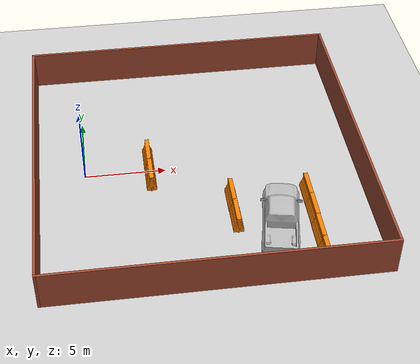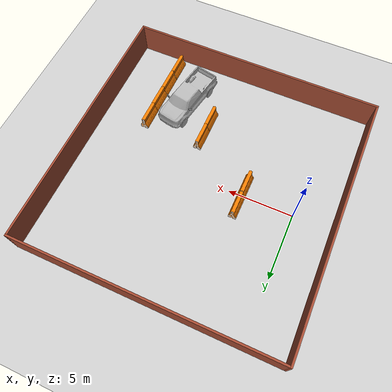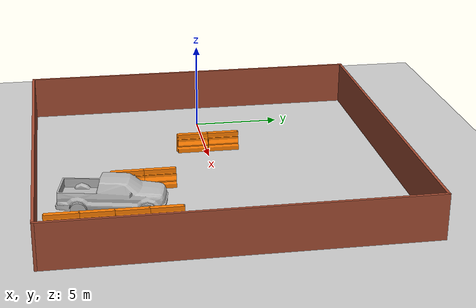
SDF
<sdf version="1.7">
 <world name="default">
  <light name="sun" type="directional">
   <pose>0 0 10 0 -0 0</pose>
   <diffuse>0.8 0.8 0.8 1</diffuse>
   <specular>0.2 0.2 0.2 1</specular>
   <attenuation>
    <range>1000</range>
    <constant>0.9</constant>
    <linear>0.01</linear>
    <quadratic>0.001</quadratic>
   </attenuation>
   <direction>-0.5 0.1 -0.9</direction>
   <spot><inner_angle>0</inner_angle><outer_angle>0</outer_angle><falloff>0</falloff></spot>
  </light>
  <model name="ground_plane">
   <static>1</static>
   <link name="link">
    <collision name="collision">
     <geometry><plane><normal>0 0 1</normal><size>100 100</size></plane></geometry>
     <surface>
      <contact><collide_bitmask>65535</collide_bitmask></contact>
      <friction><ode><mu>100</mu><mu2>50</mu2></ode></friction>
     </surface>
    </collision>
    <visual name="visual">
     <cast_shadows>0</cast_shadows>
     <geometry><plane><normal>0 0 1</normal><size>100 100</size></plane></geometry>
     <material>
      <script><uri>file://media/materials/scripts/gazebo.material</uri><name>Gazebo/Grey</name></script>
     </material>
    </visual>
   </link>
  </model>
  <gravity>0 0 -9.8</gravity>
  <magnetic_field>6e-06 2.3e-05 -4.2e-05</magnetic_field>
  <atmosphere type="adiabatic"/>
  <physics type="ode">
   <max_step_size>0.001</max_step_size>
   <real_time_factor>1</real_time_factor>
   <real_time_update_rate>1000</real_time_update_rate>
  </physics>
  <scene><ambient>0.4 0.4 0.4 1</ambient><background>0.7 0.7 0.7 1</background><shadows>1</shadows></scene>
  <spherical_coordinates>
   <surface_model>EARTH_WGS84</surface_model>
   <latitude_deg>0</latitude_deg>
   <longitude_deg>0</longitude_deg>
   <elevation>0</elevation>
   <heading_deg>0</heading_deg>
  </spherical_coordinates>
  <model name="drc_practice_organge_jersey_barrier">
   <static>1</static>
   <link name="link">
    <visual name="visual">
     <geometry>
      <mesh><uri>model://drc_practice_orange_jersey_barrier/meshes/jersey_barrier.dae</uri></mesh>
     </geometry>
    </visual>
    <collision name="collision">
     <geometry>
      <mesh><uri>model://drc_practice_orange_jersey_barrier/meshes/jersey_barrier.dae</uri></mesh>
     </geometry>
    </collision>
   </link>
   <pose>4 1 0 0 -0 0</pose>
  </model>
  <model name="drc_practice_organge_jersey_barrier_0">
   <static>1</static>
   <link name="link">
    <visual name="visual">
     <geometry>
      <mesh><uri>model://drc_practice_orange_jersey_barrier/meshes/jersey_barrier.dae</uri></mesh>
     </geometry>
    </visual>
    <collision name="collision">
     <geometry>
      <mesh><uri>model://drc_practice_orange_jersey_barrier/meshes/jersey_barrier.dae</uri></mesh>
     </geometry>
    </collision>
   </link>
   <pose>4 -0.8 0 0 -0 0</pose>
  </model>
  <model name="wall2x2">
   <pose>7 0 0 0 -0 0</pose>
   <link name="Wall_10">
    <collision name="Wall_10_Collision">
     <geometry><box><size>20 0.15 2.5</size></box></geometry>
     <pose>0 0 1.25 0 -0 0</pose>
    </collision>
    <visual name="Wall_10_Visual">
     <pose>0 0 1.25 0 -0 0</pose>
     <geometry><box><size>20 0.15 2.5</size></box></geometry>
     <material>
      <script><uri>file://media/materials/scripts/gazebo.material</uri><name>Gazebo/Bricks</name></script>
      <ambient>1 1 1 1</ambient>
     </material>
     <meta><layer>0</layer></meta>
    </visual>
    <pose>-0 -9.925 0 0 -0 3.14159</pose>
   </link>
   <link name="Wall_11">
    <collision name="Wall_11_Collision">
     <geometry><box><size>20 0.15 2.5</size></box></geometry>
     <pose>0 0 1.25 0 -0 0</pose>
    </collision>
    <visual name="Wall_11_Visual">
     <pose>0 0 1.25 0 -0 0</pose>
     <geometry><box><size>20 0.15 2.5</size></box></geometry>
     <material>
      <script><uri>file://media/materials/scripts/gazebo.material</uri><name>Gazebo/Bricks</name></script>
      <ambient>1 1 1 1</ambient>
     </material>
     <meta><layer>0</layer></meta>
    </visual>
    <pose>-9.925 -0 0 0 -0 1.5708</pose>
   </link>
   <link name="Wall_8">
    <collision name="Wall_8_Collision">
     <geometry><box><size>20 0.15 2.5</size></box></geometry>
     <pose>0 0 1.25 0 -0 0</pose>
    </collision>
    <visual name="Wall_8_Visual">
     <pose>0 0 1.25 0 -0 0</pose>
     <geometry><box><size>20 0.15 2.5</size></box></geometry>
     <material>
      <script><uri>file://media/materials/scripts/gazebo.material</uri><name>Gazebo/Bricks</name></script>
      <ambient>1 1 1 1</ambient>
     </material>
     <meta><layer>0</layer></meta>
    </visual>
    <pose>-0 9.925 0 0 -0 0</pose>
   </link>
   <link name="Wall_9">
    <collision name="Wall_9_Collision">
     <geometry><box><size>20 0.15 2.5</size></box></geometry>
     <pose>0 0 1.25 0 -0 0</pose>
    </collision>
    <visual name="Wall_9_Visual">
     <pose>0 0 1.25 0 -0 0</pose>
     <geometry><box><size>20 0.15 2.5</size></box></geometry>
     <material>
      <script><uri>file://media/materials/scripts/gazebo.material</uri><name>Gazebo/Bricks</name></script>
      <ambient>1 1 1 1</ambient>
     </material>
     <meta><layer>0</layer></meta>
    </visual>
    <pose>9.925 -0 0 0 -0 -1.5708</pose>
   </link>
   <static>1</static>
  </model>
  <model name="pickup">
   <static>1</static>
   <link name="link">
    <collision name="collision">
     <pose>0 0 0 0 0 -1.5708</pose>
     <geometry><mesh><uri>model://pickup/meshes/pickup.dae</uri></mesh></geometry>
    </collision>
    <visual name="visual">
     <pose>0 0 0 0 0 -1.5708</pose>
     <geometry><mesh><uri>model://pickup/meshes/pickup.dae</uri></mesh></geometry>
    </visual>
   </link>
   <pose>11.1509 -5.82036 0 0 -0 1.37658</pose>
  </model>
  <model name="drc_practice_organge_jersey_barrier_1_clone_0">
   <static>1</static>
   <link name="link">
    <visual name="visual">
     <geometry>
      <mesh><uri>model://drc_practice_orange_jersey_barrier/meshes/jersey_barrier.dae</uri></mesh>
     </geometry>
    </visual>
    <collision name="collision">
     <geometry>
      <mesh><uri>model://drc_practice_orange_jersey_barrier/meshes/jersey_barrier.dae</uri></mesh>
     </geometry>
    </collision>
   </link>
   <pose>8.68886 -4.9692 -0 0 -0 0</pose>
  </model>
  <model name="drc_practice_organge_jersey_barrier_1_clone_1_clone">
   <static>1</static>
   <link name="link">
    <visual name="visual">
     <geometry>
      <mesh><uri>model://drc_practice_orange_jersey_barrier/meshes/jersey_barrier.dae</uri></mesh>
     </geometry>
    </visual>
    <collision name="collision">
     <geometry>
      <mesh><uri>model://drc_practice_orange_jersey_barrier/meshes/jersey_barrier.dae</uri></mesh>
     </geometry>
    </collision>
   </link>
   <pose>13.2789 -8.604 0 0 -0 0</pose>
  </model>
  <model name="drc_practice_organge_jersey_barrier_1_clone_1_clone_0">
   <static>1</static>
   <link name="link">
    <visual name="visual">
     <geometry>
      <mesh><uri>model://drc_practice_orange_jersey_barrier/meshes/jersey_barrier.dae</uri></mesh>
     </geometry>
    </visual>
    <collision name="collision">
     <geometry>
      <mesh><uri>model://drc_practice_orange_jersey_barrier/meshes/jersey_barrier.dae</uri></mesh>
     </geometry>
    </collision>
   </link>
   <pose>13.2916 -6.8197 0 0 -0 0</pose>
  </model>
  <model name="drc_practice_organge_jersey_barrier_1_clone_1_clone_1">
   <static>1</static>
   <link name="link">
    <visual name="visual">
     <geometry>
      <mesh><uri>model://drc_practice_orange_jersey_barrier/meshes/jersey_barrier.dae</uri></mesh>
     </geometry>
    </visual>
    <collision name="collision">
     <geometry>
      <mesh><uri>model://drc_practice_orange_jersey_barrier/meshes/jersey_barrier.dae</uri></mesh>
     </geometry>
    </collision>
   </link>
   <pose>13.3164 -5.07833 0 0 -0 0</pose>
  </model>
  <model name="drc_practice_organge_jersey_barrier_1_clone_1_clone_2">
   <static>1</static>
   <link name="link">
    <visual name="visual">
     <geometry>
      <mesh><uri>model://drc_practice_orange_jersey_barrier/meshes/jersey_barrier.dae</uri></mesh>
     </geometry>
    </visual>
    <collision name="collision">
     <geometry>
      <mesh><uri>model://drc_practice_orange_jersey_barrier/meshes/jersey_barrier.dae</uri></mesh>
     </geometry>
    </collision>
   </link>
   <pose>13.3152 -3.34368 0 0 -0 0</pose>
  </model>
  <model name="drc_practice_organge_jersey_barrier_1_clone_0_clone">
   <static>1</static>
   <link name="link">
    <visual name="visual">
     <geometry>
      <mesh><uri>model://drc_practice_orange_jersey_barrier/meshes/jersey_barrier.dae</uri></mesh>
     </geometry>
    </visual>
    <collision name="collision">
     <geometry>
      <mesh><uri>model://drc_practice_orange_jersey_barrier/meshes/jersey_barrier.dae</uri></mesh>
     </geometry>
    </collision>
   </link>
   <pose>8.68281 -3.23123 -0 0 -0 0</pose>
  </model>
 </world>
</sdf>
